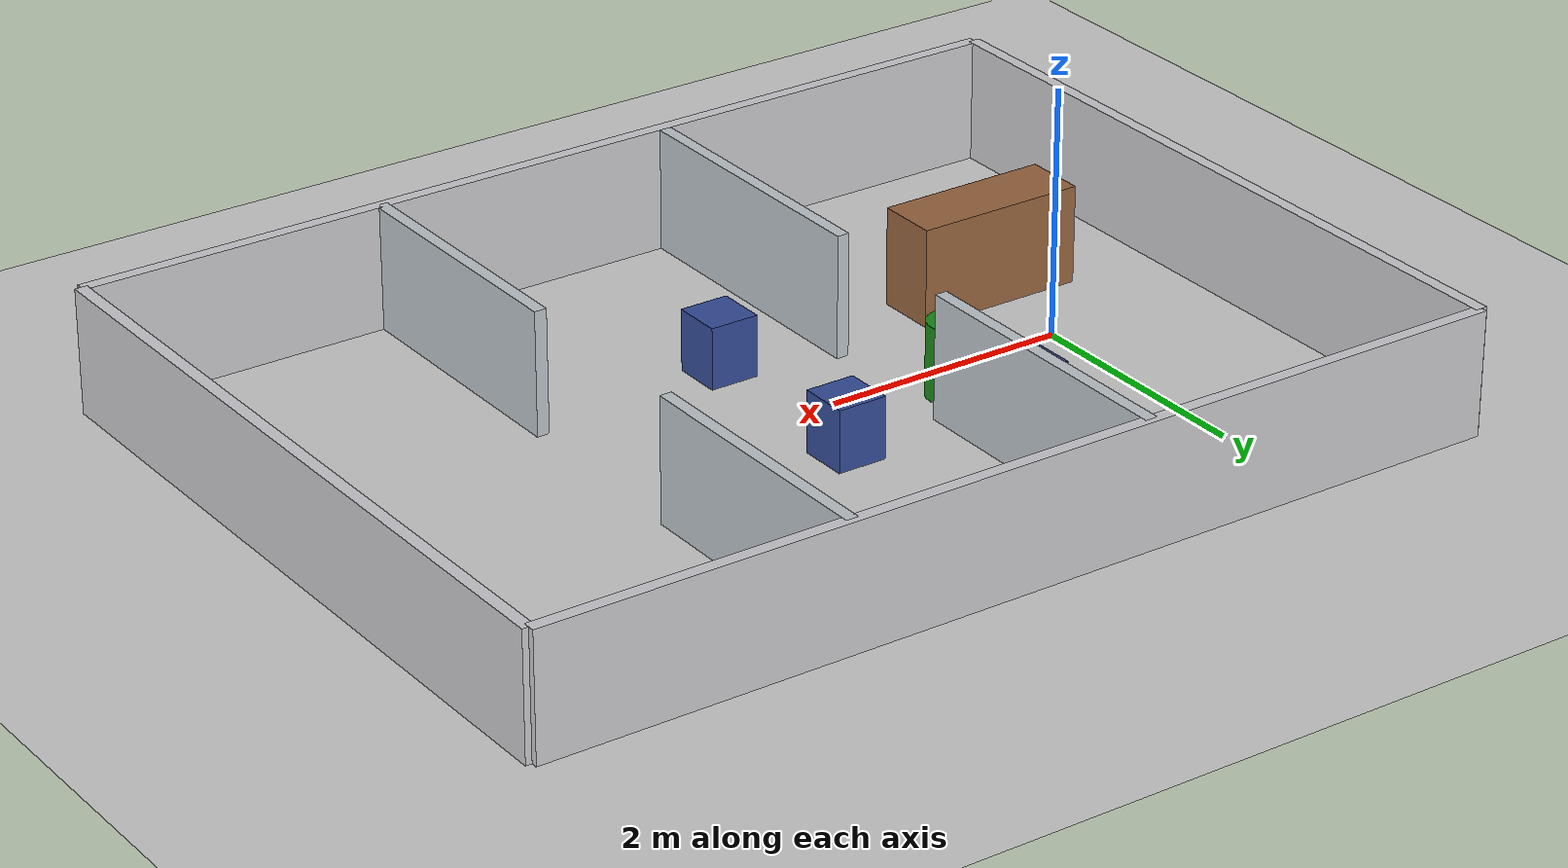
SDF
<?xml version="1.0" ?>
<sdf version="1.6">
  <world name="hospital">

    <!-- Cheap ambient + one directional light (no shadows to save CPU). -->
    <scene>
      <ambient>0.6 0.6 0.6 1</ambient>
      <background>0.8 0.85 0.9 1</background>
      <shadows>false</shadows>
    </scene>

    <light name="sun" type="directional">
      <cast_shadows>false</cast_shadows>
      <pose>0 0 10 0 0 0</pose>
      <diffuse>0.9 0.9 0.9 1</diffuse>
      <specular>0.1 0.1 0.1 1</specular>
      <direction>-0.3 0.2 -1.0</direction>
    </light>

    <!-- Flat floor. -->
    <include>
      <uri>model://ground_plane</uri>
    </include>

    <model name="hospital_structure">
      <static>true</static>

      <!-- ===== Outer boundary (8 m x 6 m room) ===== -->
      <!-- North wall (y = +3), along X, length 8, centred at x=2.5 -->
      <link name="wall_north">
        <pose>2.5 3.0 0.5 0 0 0</pose>
        <collision name="c"><geometry><box><size>8.0 0.1 1.0</size></box></geometry></collision>
        <visual name="v"><geometry><box><size>8.0 0.1 1.0</size></box></geometry>
          <material><ambient>0.8 0.8 0.82 1</ambient><diffuse>0.8 0.8 0.82 1</diffuse></material>
        </visual>
      </link>

      <!-- South wall (y = -3) -->
      <link name="wall_south">
        <pose>2.5 -3.0 0.5 0 0 0</pose>
        <collision name="c"><geometry><box><size>8.0 0.1 1.0</size></box></geometry></collision>
        <visual name="v"><geometry><box><size>8.0 0.1 1.0</size></box></geometry>
          <material><ambient>0.8 0.8 0.82 1</ambient><diffuse>0.8 0.8 0.82 1</diffuse></material>
        </visual>
      </link>

      <!-- West wall (x = -1.5), along Y, length 6 -->
      <link name="wall_west">
        <pose>-1.5 0.0 0.5 0 0 1.5708</pose>
        <collision name="c"><geometry><box><size>6.0 0.1 1.0</size></box></geometry></collision>
        <visual name="v"><geometry><box><size>6.0 0.1 1.0</size></box></geometry>
          <material><ambient>0.8 0.8 0.82 1</ambient><diffuse>0.8 0.8 0.82 1</diffuse></material>
        </visual>
      </link>

      <!-- East wall (x = 6.5), behind pediatrics -->
      <link name="wall_east">
        <pose>6.5 0.0 0.5 0 0 1.5708</pose>
        <collision name="c"><geometry><box><size>6.0 0.1 1.0</size></box></geometry></collision>
        <visual name="v"><geometry><box><size>6.0 0.1 1.0</size></box></geometry>
          <material><ambient>0.8 0.8 0.82 1</ambient><diffuse>0.8 0.8 0.82 1</diffuse></material>
        </visual>
      </link>

      <!-- ===== Reception / corridor partitions ===== -->
      <!-- Split reception (left) from the room corridor at x=1.5, leaving a
           central doorway (gap y in [-0.6, +0.6]) for the robot to pass. -->
      <link name="partition_upper">
        <pose>1.5 1.8 0.5 0 0 1.5708</pose>
        <collision name="c"><geometry><box><size>2.4 0.1 1.0</size></box></geometry></collision>
        <visual name="v"><geometry><box><size>2.4 0.1 1.0</size></box></geometry>
          <material><ambient>0.75 0.78 0.8 1</ambient><diffuse>0.75 0.78 0.8 1</diffuse></material>
        </visual>
      </link>
      <link name="partition_lower">
        <pose>1.5 -1.8 0.5 0 0 1.5708</pose>
        <collision name="c"><geometry><box><size>2.4 0.1 1.0</size></box></geometry></collision>
        <visual name="v"><geometry><box><size>2.4 0.1 1.0</size></box></geometry>
          <material><ambient>0.75 0.78 0.8 1</ambient><diffuse>0.75 0.78 0.8 1</diffuse></material>
        </visual>
      </link>

      <!-- Separate the two side rooms from the pediatrics corridor at x=4,
           leaving a central doorway (gap y in [-0.8, +0.8]) to reach x=5. -->
      <link name="room_wall_upper">
        <pose>4.0 1.9 0.5 0 0 1.5708</pose>
        <collision name="c"><geometry><box><size>2.2 0.1 1.0</size></box></geometry></collision>
        <visual name="v"><geometry><box><size>2.2 0.1 1.0</size></box></geometry>
          <material><ambient>0.75 0.78 0.8 1</ambient><diffuse>0.75 0.78 0.8 1</diffuse></material>
        </visual>
      </link>
      <link name="room_wall_lower">
        <pose>4.0 -1.9 0.5 0 0 1.5708</pose>
        <collision name="c"><geometry><box><size>2.2 0.1 1.0</size></box></geometry></collision>
        <visual name="v"><geometry><box><size>2.2 0.1 1.0</size></box></geometry>
          <material><ambient>0.75 0.78 0.8 1</ambient><diffuse>0.75 0.78 0.8 1</diffuse></material>
        </visual>
      </link>

      <!-- ===== Reception desk (simple box) near origin ===== -->
      <link name="reception_desk">
        <pose>0.0 -0.9 0.4 0 0 0</pose>
        <collision name="c"><geometry><box><size>1.4 0.5 0.8</size></box></geometry></collision>
        <visual name="v"><geometry><box><size>1.4 0.5 0.8</size></box></geometry>
          <material><ambient>0.5 0.35 0.2 1</ambient><diffuse>0.6 0.4 0.25 1</diffuse></material>
        </visual>
      </link>
    </model>

    <!-- Chair 1 — reception area -->
    <model name="chair_1">
      <static>true</static>
      <link name="l">
        <pose>1.0 1.0 0.25 0 0 0</pose>
        <collision name="c"><geometry><box><size>0.4 0.4 0.5</size></box></geometry></collision>
        <visual name="v"><geometry><box><size>0.4 0.4 0.5</size></box></geometry>
          <material><ambient>0.2 0.3 0.6 1</ambient><diffuse>0.2 0.3 0.6 1</diffuse></material>
        </visual>
      </link>
    </model>

    <!-- Chair 2 — near the corridor -->
    <model name="chair_2">
      <static>true</static>
      <link name="l">
        <pose>2.4 0.7 0.25 0 0 0</pose>
        <collision name="c"><geometry><box><size>0.4 0.4 0.5</size></box></geometry></collision>
        <visual name="v"><geometry><box><size>0.4 0.4 0.5</size></box></geometry>
          <material><ambient>0.2 0.3 0.6 1</ambient><diffuse>0.2 0.3 0.6 1</diffuse></material>
        </visual>
      </link>
    </model>

    <!-- Chair 3 — lower corridor -->
    <model name="chair_3">
      <static>true</static>
      <link name="l">
        <pose>2.4 -0.9 0.25 0 0 0</pose>
        <collision name="c"><geometry><box><size>0.4 0.4 0.5</size></box></geometry></collision>
        <visual name="v"><geometry><box><size>0.4 0.4 0.5</size></box></geometry>
          <material><ambient>0.2 0.3 0.6 1</ambient><diffuse>0.2 0.3 0.6 1</diffuse></material>
        </visual>
      </link>
    </model>

    <!-- Potted plant — cylinder, mild obstacle near the entrance doorway -->
    <model name="plant">
      <static>true</static>
      <link name="l">
        <pose>1.2 0.35 0.3 0 0 0</pose>
        <collision name="c"><geometry><cylinder><radius>0.2</radius><length>0.6</length></cylinder></geometry></collision>
        <visual name="v"><geometry><cylinder><radius>0.2</radius><length>0.6</length></cylinder></geometry>
          <material><ambient>0.1 0.5 0.1 1</ambient><diffuse>0.1 0.55 0.1 1</diffuse></material>
        </visual>
      </link>
    </model>

    <!-- Modest real-time factor target; keep physics light for CPU. -->
    <physics type="ode">
      <max_step_size>0.004</max_step_size>
      <real_time_factor>1.0</real_time_factor>
      <real_time_update_rate>250</real_time_update_rate>
    </physics>

  </world>
</sdf>
